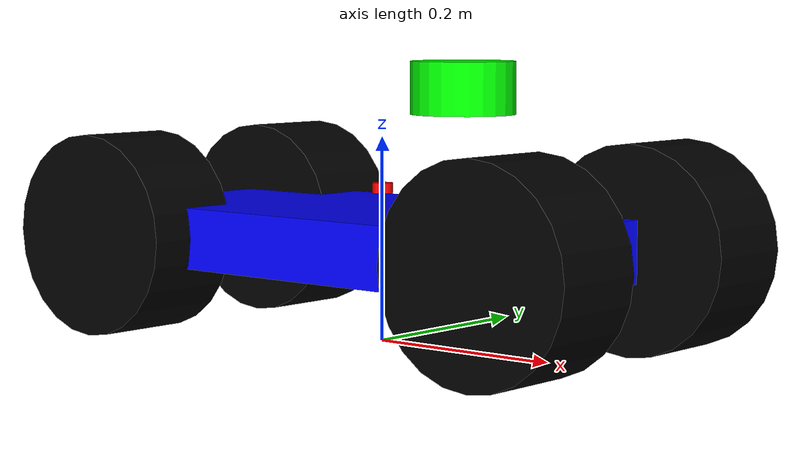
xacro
<?xml version="1.0"?>
<robot name="car" xmlns:xacro="http://www.ros.org/wiki/xacro">

  <material name="black">
    <color rgba="0 0 0 1"/>
  </material>

  <material name="blue">
    <color rgba="0 0 1 1"/>
  </material>

  <material name="red">
    <color rgba="1 0 0 1"/>
  </material>

  <material name="green">
    <color rgba="0 1 0 1"/>
  </material>

  <link name="base_link">
    <visual>
      <origin xyz="0 0 0" rpy="0 0 0"/>
      <geometry>
         <box size="0.0001 0.0001 0.0001"/>
      </geometry>
    </visual>
  </link>

  <xacro:property name="body_length" value="0.5"/>
  <xacro:property name="body_width" value="0.25"/>
  <xacro:property name="body_height" value="0.06"/>
  <xacro:property name="body_mass" value="7"/>
  <xacro:property name="x" value="0.24"/>
  <xacro:property name="y" value="0.12"/>
  <xacro:property name="wheel_radius" value="0.1"/>
  <xacro:property name="wheel_length" value="0.1"/>
  <xacro:property name="wheel_mass" value="2"/>

  <xacro:macro name="cylinder_inertia" params="m r h">
    <inertia  ixx="${m*(3*r*r+h*h)/12}" ixy = "0" ixz = "0"
              iyy="${m*r*r/2}" iyz = "0"
              izz="${m*(3*r*r+h*h)/12}" />
  </xacro:macro>

  <xacro:macro name="box_inertia" params="x y z mass">
    <inertia ixx="${0.0833333 * mass * (y*y + z*z)}" ixy="0.0" ixz="0.0"
      iyy="${0.0833333 * mass * (x*x + z*z)}" iyz="0.0"
      izz="${0.0833333 * mass * (x*x + y*y)}" />
  </xacro:macro>

  <link name="body_link">
    <inertial>
      <mass value="${body_mass}"/>
      <origin xyz="0 0 0" rpy="0 0 0"/>
      <xacro:box_inertia mass="${body_mass}" x="${body_length}" y="${body_width}" z="${body_height}"/>
    </inertial>
    <visual>
      <origin xyz="0 0 0" rpy="0 0 0"/>
      <geometry>
        <box size="${body_length} ${body_width} ${body_height}"/>
      </geometry>
      <material name="blue"/>
    </visual>
    <collision>
      <origin xyz="0 0 0" rpy="0 0 0"/>
      <geometry>
        <box size="${body_length} ${body_width} ${body_height}"/>
      </geometry>
    </collision>
  </link>

  <joint name="base_to_body" type="fixed">
    <origin xyz="0 0 0.1" rpy="0 0 0"/>
    <parent link="base_link"/>
    <child link="body_link"/>
  </joint>

  <link name="laser_link">
    <inertial>
      <mass value="1"/>
      <origin xyz="0 0 0"/>
      <xacro:cylinder_inertia  m="1" r="0.05" h="0.05" />
    </inertial>
    <visual>
      <origin xyz="0 0 0" rpy="0 0 0"/>
      <geometry>
        <cylinder length="0.05" radius="0.05"/>
      </geometry>
      <material name="green"/>
    </visual>
    <collision>
      <origin xyz="0 0 0" rpy="0 0 0"/>
      <geometry>
        <cylinder length="0.05" radius="0.05"/>
      </geometry>
    </collision>
  </link>

  <link name="imu_link">
    <visual>
      <origin xyz="0 0 0" rpy="0 0 0"/>
      <geometry>
        <cylinder length="0.01" radius="0.01"/>
      </geometry>
      <material name="red"/>
    </visual>
    <collision>
      <origin xyz="0 0 0" rpy="0 0 0"/>
      <geometry>
        <cylinder length="0.01" radius="0.01"/>
      </geometry>
    </collision>
  </link>

  <joint name="body_to_laser" type="fixed">
    <origin xyz="0.1 0 0.15" rpy="0 0 0"/>
    <parent link="body_link"/>
    <child link="laser_link"/>
  </joint>

  <joint name="body_to_imu" type="fixed">
    <origin xyz="0 0 0.05" rpy="0 0 0"/>
    <parent link="body_link"/>
    <child link="imu_link"/>
  </joint>

  <gazebo>
    <plugin name="gazebo_ros_control" filename="libgazebo_ros_control.so">
      <robotNamespace>/</robotNamespace>
      <robotSimType>gazebo_ros_control/DefaultRobotHWSim</robotSimType>
    </plugin>
  </gazebo>

  <gazebo reference="body_link">
    <material>Gazebo/Blue</material>
  </gazebo>

  <gazebo>
    <plugin name="skid_steer_drive_controller" filename="libgazebo_ros_skid_steer_drive.so">
        <updateRate>100.0</updateRate>
        <robotNamespace>/</robotNamespace>
        <leftFrontJoint>body_to_left_front</leftFrontJoint>
        <rightFrontJoint>body_to_right_front</rightFrontJoint>
        <leftRearJoint>body_to_left_rear</leftRearJoint>
        <rightRearJoint>body_to_right_rear</rightRearJoint>
        <wheelSeparation>0.3</wheelSeparation>
        <wheelDiameter>0.2</wheelDiameter>
        <robotBaseFrame>base_link</robotBaseFrame>
        <torque>30</torque>
        <topicName>cmd_vel</topicName>
        <broadcastTF>true</broadcastTF>
    </plugin>
  </gazebo>

  <gazebo reference="laser_link">
    <material>Gazebo/Green</material>
    <sensor type="gpu_ray" name="laser_sensor">
      <pose>0 0 0 0 0 0</pose>
      <visualize>true</visualize>
      <update_rate>40</update_rate>
      <ray>
        <scan>
          <horizontal>
            <samples>720</samples>
            <resolution>1</resolution>
            <min_angle>-1.570796</min_angle>
            <max_angle>1.570796</max_angle>
          </horizontal>
        </scan>
        <range>
          <min>0.10</min>
          <max>10.0</max>
          <resolution>0.01</resolution>
        </range>
        <noise>
          <type>gaussian</type>
          <mean>0.0</mean>
          <stddev>0.01</stddev>
        </noise>
      </ray>
      <plugin name="gazebo_ros_lasers_controller" filename="libgazebo_ros_gpu_laser.so">
        <topicName>/laser/scan</topicName>
        <frameName>laser_link</frameName>
      </plugin>
    </sensor>
  </gazebo>

  <gazebo reference="imu_link">
    <turnGravityOff>false</turnGravityOff>
    <sensor name="imu_sensor" type="imu">
      <always_on>true</always_on>
      <update_rate>100</update_rate>
      <visualize>true</visualize>
      <topic>imu</topic>
      <plugin filename="libgazebo_ros_imu_sensor.so" name="imu_plugin">
        <topicName>imu</topicName>
        <bodyName>imu_link</bodyName>
        <updateRateHZ>10.0</updateRateHZ>
        <gaussianNoise>0.0</gaussianNoise>
        <xyzOffset>0 0 0</xyzOffset>
        <rpyOffset>0 0 0</rpyOffset>
        <frameName>imu_link</frameName>
      </plugin>
      <pose>0 0 0 0 0 0</pose>
    </sensor>
  </gazebo>

  <xacro:macro name="wheel" params="prefix x y">
    <link name="${prefix}_wheel">
      <inertial>
        <mass value="${wheel_mass}"/>
        <origin xyz="0 0 0"/>
        <xacro:cylinder_inertia  m="${wheel_mass}" r="${wheel_radius}" h="${wheel_length}" />
      </inertial>
      <visual>
        <origin xyz="0 0 0" rpy="1.5707 0 0"/>
        <geometry>
          <cylinder length="${wheel_length}" radius="${wheel_radius}"/>
        </geometry>
        <material name="black"/>
      </visual>
      <collision>
        <origin xyz="0 0 0" rpy="1.5707 0 0"/>
        <geometry>
          <cylinder length="${wheel_length}" radius="${wheel_radius}"/>
        </geometry>
      </collision>
    </link>

    <joint name="body_to_${prefix}" type="continuous">
      <origin xyz="${x} ${y} 0" rpy="0 0 0"/>
      <axis xyz="0 1 0" rpy="0 0 0" />
      <parent link="body_link"/>
      <child link="${prefix}_wheel"/>
    </joint>

    <gazebo reference="${prefix}_wheel">
      <mu1 value="7.0"/>
      <mu2 value="7.0"/>
      <kp value="10000000.0" />
      <kd value="1.0" />
      <fdir1 value="1 0 0"/>
      <turnGravityOff>false</turnGravityOff>
      <material>Gazebo/Black</material>
    </gazebo>

  </xacro:macro>

  <xacro:wheel prefix="left_front" x="${x}" y="${y}"/>
  <xacro:wheel prefix="right_front" x="${x}" y="-${y}"/>
  <xacro:wheel prefix="left_rear" x="-${x}" y="${y}"/>
  <xacro:wheel prefix="right_rear" x="-${x}" y="-${y}"/>
</robot>
